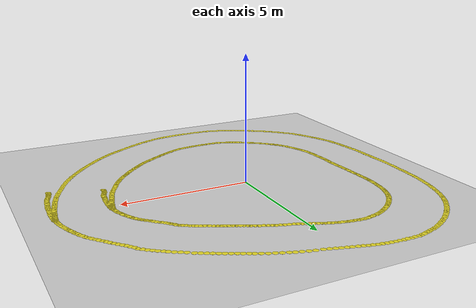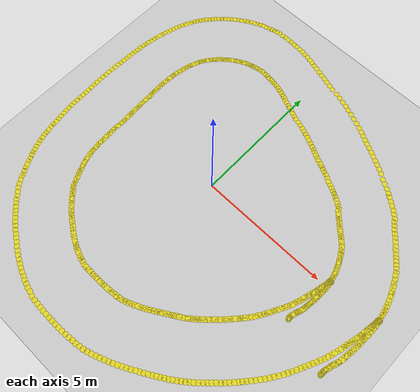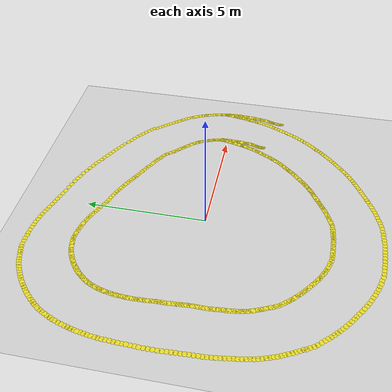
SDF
<sdf version="1.6">
 <world name="default">
  <include><uri>model://ground_plane</uri></include>
  <include><uri>model://sun</uri></include>
  <include><uri>model://loop_1</uri></include>
 </world>
</sdf>
